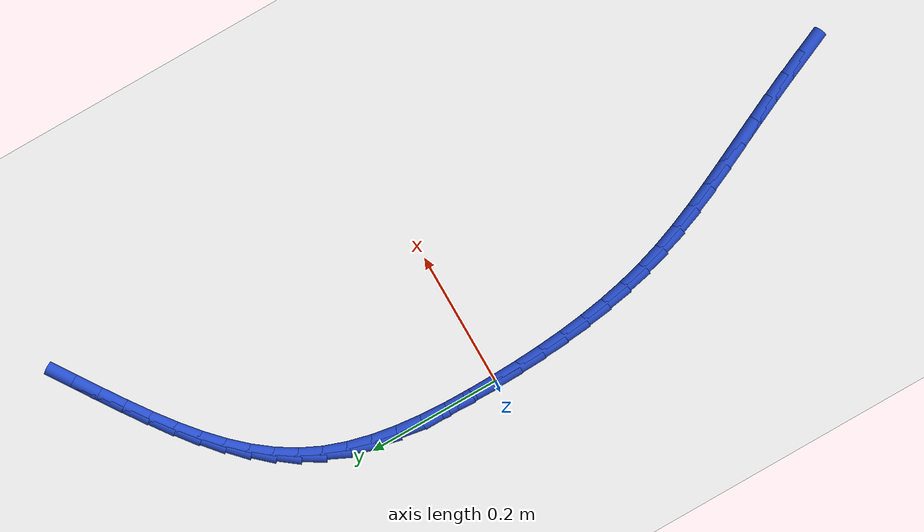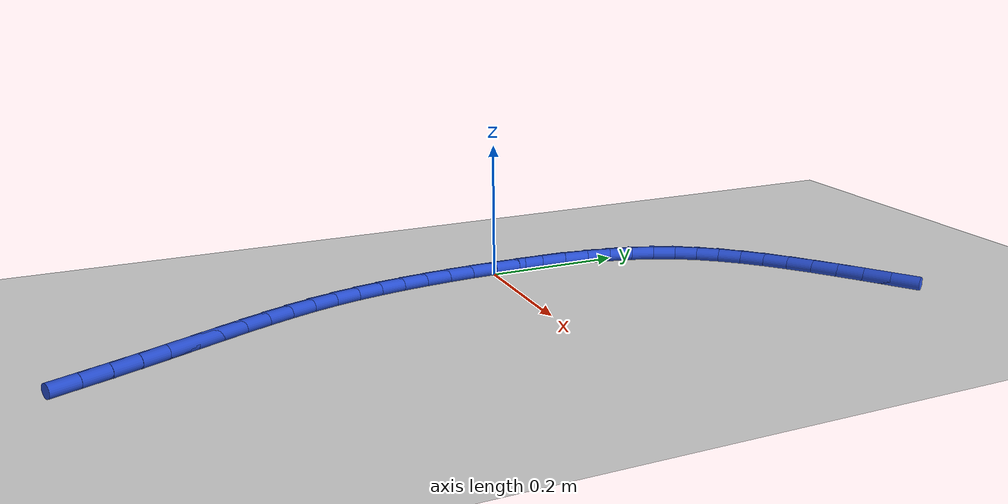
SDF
<sdf version="1.6">
 <world name="default">
  <model name="ground_plane">
   <static>1</static>
   <link name="link">
    <collision name="collision">
     <geometry><plane><normal>0 0 1</normal><size>100 100</size></plane></geometry>
     <surface><friction><ode><mu>100</mu><mu2>50</mu2></ode></friction></surface>
    </collision>
    <visual name="visual">
     <cast_shadows>0</cast_shadows>
     <geometry><plane><normal>0 0 1</normal><size>100 100</size></plane></geometry>
     <material>
      <script><uri>file://media/materials/scripts/gazebo.material</uri><name>Gazebo/WhiteGlow</name></script>
     </material>
    </visual>
   </link>
  </model>
  <model name="line">
   <link name="link_0">
    <pose>2.0599841277224584e-17 -2.0816681711721685e-17 0.01 0 1.57 -1.5588604875989553</pose>
    <collision name="collision">
     <geometry><cylinder><radius>0.01</radius><length>0.08</length></cylinder></geometry>
    </collision>
    <visual name="visual">
     <material>
      <script><name>Gazebo/Blue</name><uri>file://media/materials/scripts/gazebo.material</uri></script>
     </material>
     <geometry><cylinder><radius>0.01</radius><length>0.08</length></cylinder></geometry>
    </visual>
   </link>
   <link name="link_1">
    <pose>-0.00046476527579154836 0.038936785016901176 0.01 0 1.57 1.5537833931867555</pose>
    <collision name="collision">
     <geometry><cylinder><radius>0.01</radius><length>0.08</length></cylinder></geometry>
    </collision>
    <visual name="visual">
     <material>
      <script><name>Gazebo/Blue</name><uri>file://media/materials/scripts/gazebo.material</uri></script>
     </material>
     <geometry><cylinder><radius>0.01</radius><length>0.08</length></cylinder></geometry>
    </visual>
   </link>
   <link name="link_2">
    <pose>0.00019843336409469333 0.07791505111378115 0.01 0 1.57 1.5151328518593705</pose>
    <collision name="collision">
     <geometry><cylinder><radius>0.01</radius><length>0.08</length></cylinder></geometry>
    </collision>
    <visual name="visual">
     <material>
      <script><name>Gazebo/Blue</name><uri>file://media/materials/scripts/gazebo.material</uri></script>
     </material>
     <geometry><cylinder><radius>0.01</radius><length>0.08</length></cylinder></geometry>
    </visual>
   </link>
   <link name="link_3">
    <pose>0.0023521172330233805 0.1165662325395032 0.01 0 1.57 1.4656230836972577</pose>
    <collision name="collision">
     <geometry><cylinder><radius>0.01</radius><length>0.08</length></cylinder></geometry>
    </collision>
    <visual name="visual">
     <material>
      <script><name>Gazebo/Blue</name><uri>file://media/materials/scripts/gazebo.material</uri></script>
     </material>
     <geometry><cylinder><radius>0.01</radius><length>0.08</length></cylinder></geometry>
    </visual>
   </link>
   <link name="link_4">
    <pose>0.00635880764435914 0.15452176354293048 0.01 0 1.57 1.4037054161835596</pose>
    <collision name="collision">
     <geometry><cylinder><radius>0.01</radius><length>0.08</length></cylinder></geometry>
    </collision>
    <visual name="visual">
     <material>
      <script><name>Gazebo/Blue</name><uri>file://media/materials/scripts/gazebo.material</uri></script>
     </material>
     <geometry><cylinder><radius>0.01</radius><length>0.08</length></cylinder></geometry>
    </visual>
   </link>
   <link name="link_5">
    <pose>0.01258102591146661 0.19141307837292645 0.01 0 1.57 1.3275268543399565</pose>
    <collision name="collision">
     <geometry><cylinder><radius>0.01</radius><length>0.08</length></cylinder></geometry>
    </collision>
    <visual name="visual">
     <material>
      <script><name>Gazebo/Blue</name><uri>file://media/materials/scripts/gazebo.material</uri></script>
     </material>
     <geometry><cylinder><radius>0.01</radius><length>0.08</length></cylinder></geometry>
    </visual>
   </link>
   <link name="link_6">
    <pose>0.021381293347710426 0.22687161127835437 0.01 0 1.57 1.2351588532015916</pose>
    <collision name="collision">
     <geometry><cylinder><radius>0.01</radius><length>0.08</length></cylinder></geometry>
    </collision>
    <visual name="visual">
     <material>
      <script><name>Gazebo/Blue</name><uri>file://media/materials/scripts/gazebo.material</uri></script>
     </material>
     <geometry><cylinder><radius>0.01</radius><length>0.08</length></cylinder></geometry>
    </visual>
   </link>
   <link name="link_7">
    <pose>0.0331221312664552 0.2605287965080773 0.01 0 1.57 1.1265397133975918</pose>
    <collision name="collision">
     <geometry><cylinder><radius>0.01</radius><length>0.08</length></cylinder></geometry>
    </collision>
    <visual name="visual">
     <material>
      <script><name>Gazebo/Blue</name><uri>file://media/materials/scripts/gazebo.material</uri></script>
     </material>
     <geometry><cylinder><radius>0.01</radius><length>0.08</length></cylinder></geometry>
    </visual>
   </link>
   <link name="link_8">
    <pose>0.04812858342493951 0.2920555509317611 0.01 0 1.57 1.0166711648356797</pose>
    <collision name="collision">
     <geometry><cylinder><radius>0.01</radius><length>0.08</length></cylinder></geometry>
    </collision>
    <visual name="visual">
     <material>
      <script><name>Gazebo/Blue</name><uri>file://media/materials/scripts/gazebo.material</uri></script>
     </material>
     <geometry><cylinder><radius>0.01</radius><length>0.08</length></cylinder></geometry>
    </visual>
   </link>
   <link name="link_9">
    <pose>0.06635615919485469 0.3215120960463239 0.01 0 1.57 0.9171325374831599</pose>
    <collision name="collision">
     <geometry><cylinder><radius>0.01</radius><length>0.08</length></cylinder></geometry>
    </collision>
    <visual name="visual">
     <material>
      <script><name>Gazebo/Blue</name><uri>file://media/materials/scripts/gazebo.material</uri></script>
     </material>
     <geometry><cylinder><radius>0.01</radius><length>0.08</length></cylinder></geometry>
    </visual>
   </link>
   <link name="link_10">
    <pose>0.0875500178464192 0.34918025726715307 0.01 0 1.57 0.830533037246155</pose>
    <collision name="collision">
     <geometry><cylinder><radius>0.01</radius><length>0.08</length></cylinder></geometry>
    </collision>
    <visual name="visual">
     <material>
      <script><name>Gazebo/Blue</name><uri>file://media/materials/scripts/gazebo.material</uri></script>
     </material>
     <geometry><cylinder><radius>0.01</radius><length>0.08</length></cylinder></geometry>
    </visual>
   </link>
   <link name="link_11">
    <pose>0.11145288228678281 0.3753444267191318 0.01 0 1.57 0.757918798835166</pose>
    <collision name="collision">
     <geometry><cylinder><radius>0.01</radius><length>0.08</length></cylinder></geometry>
    </collision>
    <visual name="visual">
     <material>
      <script><name>Gazebo/Blue</name><uri>file://media/materials/scripts/gazebo.material</uri></script>
     </material>
     <geometry><cylinder><radius>0.01</radius><length>0.08</length></cylinder></geometry>
    </visual>
   </link>
   <link name="link_12">
    <pose>0.13780747542309502 0.4002889965271433 0.01 0 1.57 0.6992379546814061</pose>
    <collision name="collision">
     <geometry><cylinder><radius>0.01</radius><length>0.08</length></cylinder></geometry>
    </collision>
    <visual name="visual">
     <material>
      <script><name>Gazebo/Blue</name><uri>file://media/materials/scripts/gazebo.material</uri></script>
     </material>
     <geometry><cylinder><radius>0.01</radius><length>0.08</length></cylinder></geometry>
    </visual>
   </link>
   <link name="link_13">
    <pose>0.16635652016250557 0.42429835881607064 0.01 0 1.57 0.6537888642787861</pose>
    <collision name="collision">
     <geometry><cylinder><radius>0.01</radius><length>0.08</length></cylinder></geometry>
    </collision>
    <visual name="visual">
     <material>
      <script><name>Gazebo/Blue</name><uri>file://media/materials/scripts/gazebo.material</uri></script>
     </material>
     <geometry><cylinder><radius>0.01</radius><length>0.08</length></cylinder></geometry>
    </visual>
   </link>
   <link name="link_14">
    <pose>0.19684273941216407 0.447656905710797 0.01 0 1.57 0.6205854876415965</pose>
    <collision name="collision">
     <geometry><cylinder><radius>0.01</radius><length>0.08</length></cylinder></geometry>
    </collision>
    <visual name="visual">
     <material>
      <script><name>Gazebo/Blue</name><uri>file://media/materials/scripts/gazebo.material</uri></script>
     </material>
     <geometry><cylinder><radius>0.01</radius><length>0.08</length></cylinder></geometry>
    </visual>
   </link>
   <link name="link_15">
    <pose>0.22900885607922014 0.4706490293362057 0.01 0 1.57 0.5985953012654814</pose>
    <collision name="collision">
     <geometry><cylinder><radius>0.01</radius><length>0.08</length></cylinder></geometry>
    </collision>
    <visual name="visual">
     <material>
      <script><name>Gazebo/Blue</name><uri>file://media/materials/scripts/gazebo.material</uri></script>
     </material>
     <geometry><cylinder><radius>0.01</radius><length>0.08</length></cylinder></geometry>
    </visual>
   </link>
   <link name="link_16">
    <pose>0.26259759307082353 0.4935591218171797 0.01 0 1.57 0.5868676229746435</pose>
    <collision name="collision">
     <geometry><cylinder><radius>0.01</radius><length>0.08</length></cylinder></geometry>
    </collision>
    <visual name="visual">
     <material>
      <script><name>Gazebo/Blue</name><uri>file://media/materials/scripts/gazebo.material</uri></script>
     </material>
     <geometry><cylinder><radius>0.01</radius><length>0.08</length></cylinder></geometry>
    </visual>
   </link>
   <link name="link_17">
    <pose>0.29735167329412376 0.5166715752786022 0.01 0 1.57 0.5845863753674764</pose>
    <collision name="collision">
     <geometry><cylinder><radius>0.01</radius><length>0.08</length></cylinder></geometry>
    </collision>
    <visual name="visual">
     <material>
      <script><name>Gazebo/Blue</name><uri>file://media/materials/scripts/gazebo.material</uri></script>
     </material>
     <geometry><cylinder><radius>0.01</radius><length>0.08</length></cylinder></geometry>
    </visual>
   </link>
   <link name="link_213">
    <pose>0.18456920939215274 -0.6066174908747042 0.01 0 1.57 -1.1565882604727133</pose>
    <collision name="collision">
     <geometry><cylinder><radius>0.01</radius><length>0.08</length></cylinder></geometry>
    </collision>
    <visual name="visual">
     <material>
      <script><name>Gazebo/Blue</name><uri>file://media/materials/scripts/gazebo.material</uri></script>
     </material>
     <geometry><cylinder><radius>0.01</radius><length>0.08</length></cylinder></geometry>
    </visual>
   </link>
   <link name="link_214">
    <pose>0.1686465538451256 -0.5704002840808234 0.01 0 1.57 -1.1473984352249944</pose>
    <collision name="collision">
     <geometry><cylinder><radius>0.01</radius><length>0.08</length></cylinder></geometry>
    </collision>
    <visual name="visual">
     <material>
      <script><name>Gazebo/Blue</name><uri>file://media/materials/scripts/gazebo.material</uri></script>
     </material>
     <geometry><cylinder><radius>0.01</radius><length>0.08</length></cylinder></geometry>
    </visual>
   </link>
   <link name="link_215">
    <pose>0.15253517813138745 -0.5346492073093909 0.01 0 1.57 -1.134231229642557</pose>
    <collision name="collision">
     <geometry><cylinder><radius>0.01</radius><length>0.08</length></cylinder></geometry>
    </collision>
    <visual name="visual">
     <material>
      <script><name>Gazebo/Blue</name><uri>file://media/materials/scripts/gazebo.material</uri></script>
     </material>
     <geometry><cylinder><radius>0.01</radius><length>0.08</length></cylinder></geometry>
    </visual>
   </link>
   <link name="link_216">
    <pose>0.13613999645598734 -0.49951098453717385 0.01 0 1.57 -1.1240213460568407</pose>
    <collision name="collision">
     <geometry><cylinder><radius>0.01</radius><length>0.08</length></cylinder></geometry>
    </collision>
    <visual name="visual">
     <material>
      <script><name>Gazebo/Blue</name><uri>file://media/materials/scripts/gazebo.material</uri></script>
     </material>
     <geometry><cylinder><radius>0.01</radius><length>0.08</length></cylinder></geometry>
    </visual>
   </link>
   <link name="link_217">
    <pose>0.1195846176305387 -0.4649546443892969 0.01 0 1.57 -1.1228355785252508</pose>
    <collision name="collision">
     <geometry><cylinder><radius>0.01</radius><length>0.08</length></cylinder></geometry>
    </collision>
    <visual name="visual">
     <material>
      <script><name>Gazebo/Blue</name><uri>file://media/materials/scripts/gazebo.material</uri></script>
     </material>
     <geometry><cylinder><radius>0.01</radius><length>0.08</length></cylinder></geometry>
    </visual>
   </link>
   <link name="link_218">
    <pose>0.10317310615932976 -0.4308025903030548 0.01 0 1.57 -1.1311651505488074</pose>
    <collision name="collision">
     <geometry><cylinder><radius>0.01</radius><length>0.08</length></cylinder></geometry>
    </collision>
    <visual name="visual">
     <material>
      <script><name>Gazebo/Blue</name><uri>file://media/materials/scripts/gazebo.material</uri></script>
     </material>
     <geometry><cylinder><radius>0.01</radius><length>0.08</length></cylinder></geometry>
    </visual>
   </link>
   <link name="link_219">
    <pose>0.08721492507349352 -0.3968728392649679 0.01 0 1.57 -1.149289314754931</pose>
    <collision name="collision">
     <geometry><cylinder><radius>0.01</radius><length>0.08</length></cylinder></geometry>
    </collision>
    <visual name="visual">
     <material>
      <script><name>Gazebo/Blue</name><uri>file://media/materials/scripts/gazebo.material</uri></script>
     </material>
     <geometry><cylinder><radius>0.01</radius><length>0.08</length></cylinder></geometry>
    </visual>
   </link>
   <link name="link_220">
    <pose>0.07201953740416421 -0.3629834082615596 0.01 0 1.57 -1.1774204694581922</pose>
    <collision name="collision">
     <geometry><cylinder><radius>0.01</radius><length>0.08</length></cylinder></geometry>
    </collision>
    <visual name="visual">
     <material>
      <script><name>Gazebo/Blue</name><uri>file://media/materials/scripts/gazebo.material</uri></script>
     </material>
     <geometry><cylinder><radius>0.01</radius><length>0.08</length></cylinder></geometry>
    </visual>
   </link>
   <link name="link_221">
    <pose>0.05789640618247469 -0.32895231427935 0.01 0 1.57 -1.2156444939224451</pose>
    <collision name="collision">
     <geometry><cylinder><radius>0.01</radius><length>0.08</length></cylinder></geometry>
    </collision>
    <visual name="visual">
     <material>
      <script><name>Gazebo/Blue</name><uri>file://media/materials/scripts/gazebo.material</uri></script>
     </material>
     <geometry><cylinder><radius>0.01</radius><length>0.08</length></cylinder></geometry>
    </visual>
   </link>
   <link name="link_222">
    <pose>0.04515499443955842 -0.29459757430486083 0.01 0 1.57 -1.26377557123784</pose>
    <collision name="collision">
     <geometry><cylinder><radius>0.01</radius><length>0.08</length></cylinder></geometry>
    </collision>
    <visual name="visual">
     <material>
      <script><name>Gazebo/Blue</name><uri>file://media/materials/scripts/gazebo.material</uri></script>
     </material>
     <geometry><cylinder><radius>0.01</radius><length>0.08</length></cylinder></geometry>
    </visual>
   </link>
   <link name="link_223">
    <pose>0.034102930277441594 -0.25973804226145764 0.01 0 1.57 -1.3166797348365435</pose>
    <collision name="collision">
     <geometry><cylinder><radius>0.01</radius><length>0.08</length></cylinder></geometry>
    </collision>
    <visual name="visual">
     <material>
      <script><name>Gazebo/Blue</name><uri>file://media/materials/scripts/gazebo.material</uri></script>
     </material>
     <geometry><cylinder><radius>0.01</radius><length>0.08</length></cylinder></geometry>
    </visual>
   </link>
   <link name="link_224">
    <pose>0.024889418150721557 -0.22426483131521271 0.01 0 1.57 -1.3656739161370886</pose>
    <collision name="collision">
     <geometry><cylinder><radius>0.01</radius><length>0.08</length></cylinder></geometry>
    </collision>
    <visual name="visual">
     <material>
      <script><name>Gazebo/Blue</name><uri>file://media/materials/scripts/gazebo.material</uri></script>
     </material>
     <geometry><cylinder><radius>0.01</radius><length>0.08</length></cylinder></geometry>
    </visual>
   </link>
   <link name="link_225">
    <pose>0.017385350381986478 -0.18819599669053472 0.01 0 1.57 -1.4097307887177553</pose>
    <collision name="collision">
     <geometry><cylinder><radius>0.01</radius><length>0.08</length></cylinder></geometry>
    </collision>
    <visual name="visual">
     <material>
      <script><name>Gazebo/Blue</name><uri>file://media/materials/scripts/gazebo.material</uri></script>
     </material>
     <geometry><cylinder><radius>0.01</radius><length>0.08</length></cylinder></geometry>
    </visual>
   </link>
   <link name="link_226">
    <pose>0.011433393345291053 -0.15156246786197647 0.01 0 1.57 -1.4487926516222995</pose>
    <collision name="collision">
     <geometry><cylinder><radius>0.01</radius><length>0.08</length></cylinder></geometry>
    </collision>
    <visual name="visual">
     <material>
      <script><name>Gazebo/Blue</name><uri>file://media/materials/scripts/gazebo.material</uri></script>
     </material>
     <geometry><cylinder><radius>0.01</radius><length>0.08</length></cylinder></geometry>
    </visual>
   </link>
   <link name="link_227">
    <pose>0.006876213414689996 -0.11439517430409107 0.01 0 1.57 -1.4828969120618074</pose>
    <collision name="collision">
     <geometry><cylinder><radius>0.01</radius><length>0.08</length></cylinder></geometry>
    </collision>
    <visual name="visual">
     <material>
      <script><name>Gazebo/Blue</name><uri>file://media/materials/scripts/gazebo.material</uri></script>
     </material>
     <geometry><cylinder><radius>0.01</radius><length>0.08</length></cylinder></geometry>
    </visual>
   </link>
   <link name="link_228">
    <pose>0.0035564769642379332 -0.07672504549143039 0.01 0 1.57 -1.512145602078799</pose>
    <collision name="collision">
     <geometry><cylinder><radius>0.01</radius><length>0.08</length></cylinder></geometry>
    </collision>
    <visual name="visual">
     <material>
      <script><name>Gazebo/Blue</name><uri>file://media/materials/scripts/gazebo.material</uri></script>
     </material>
     <geometry><cylinder><radius>0.01</radius><length>0.08</length></cylinder></geometry>
    </visual>
   </link>
   <link name="link_229">
    <pose>0.0013168503679897381 -0.03858301089854932 0.01 0 1.57 -1.536679253739774</pose>
    <collision name="collision">
     <geometry><cylinder><radius>0.01</radius><length>0.08</length></cylinder></geometry>
    </collision>
    <visual name="visual">
     <material>
      <script><name>Gazebo/Blue</name><uri>file://media/materials/scripts/gazebo.material</uri></script>
     </material>
     <geometry><cylinder><radius>0.01</radius><length>0.08</length></cylinder></geometry>
    </visual>
   </link>
   <link name="link_230">
    <pose>1.2576745200831851e-17 1.457167719820518e-16 0.01 0 1.57 -1.556656091413262</pose>
    <collision name="collision">
     <geometry><cylinder><radius>0.01</radius><length>0.08</length></cylinder></geometry>
    </collision>
    <visual name="visual">
     <material>
      <script><name>Gazebo/Blue</name><uri>file://media/materials/scripts/gazebo.material</uri></script>
     </material>
     <geometry><cylinder><radius>0.01</radius><length>0.08</length></cylinder></geometry>
    </visual>
   </link>
   <link name="link_231">
    <pose>-0.0005514077656765424 0.038993057729665104 0.01 0 1.57 1.5693561937220344</pose>
    <collision name="collision">
     <geometry><cylinder><radius>0.01</radius><length>0.08</length></cylinder></geometry>
    </collision>
    <visual name="visual">
     <material>
      <script><name>Gazebo/Blue</name><uri>file://media/materials/scripts/gazebo.material</uri></script>
     </material>
     <geometry><cylinder><radius>0.01</radius><length>0.08</length></cylinder></geometry>
    </visual>
   </link>
   <link name="link_232">
    <pose>-0.0004947065549852207 0.07836523281589264 0.01 0 1.57 -1.5644835785810598</pose>
    <collision name="collision">
     <geometry><cylinder><radius>0.01</radius><length>0.08</length></cylinder></geometry>
    </collision>
    <visual name="visual">
     <material>
      <script><name>Gazebo/Blue</name><uri>file://media/materials/scripts/gazebo.material</uri></script>
     </material>
     <geometry><cylinder><radius>0.01</radius><length>0.08</length></cylinder></geometry>
    </visual>
   </link>
  </model>
 </world>
</sdf>
